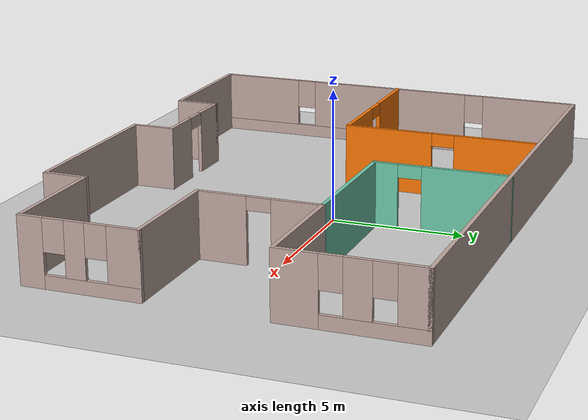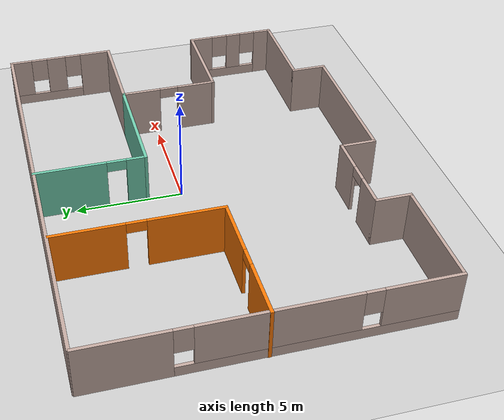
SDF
<sdf version="1.6">
 <world name="default">
  <model name="ground_plane">
   <static>1</static>
   <link name="link">
    <collision name="collision">
     <geometry><plane><normal>0 0 1</normal><size>100 100</size></plane></geometry>
     <surface>
      <contact><collide_bitmask>65535</collide_bitmask></contact>
      <friction><ode><mu>100</mu><mu2>50</mu2></ode></friction>
     </surface>
    </collision>
    <visual name="visual">
     <cast_shadows>0</cast_shadows>
     <geometry><plane><normal>0 0 1</normal><size>100 100</size></plane></geometry>
     <material>
      <script><uri>file://media/materials/scripts/gazebo.material</uri><name>Gazebo/Grey</name></script>
     </material>
    </visual>
   </link>
  </model>
  <model name="Office">
   <pose>-0.4312 -1.09674 0 0 -0 0</pose>
   <link name="Wall_12">
    <pose>-10.1892 -0.024999 0 0 0 -1.5708</pose>
    <visual name="Wall_12_Visual_0">
     <pose>-5.93121 0 1.25 0 -0 0</pose>
     <geometry><box><size>3.88759 0.15 2.5</size></box></geometry>
     <material>
      <script><uri>file://media/materials/scripts/gazebo.material</uri><name>Gazebo/Grey</name></script>
      <ambient>0.760784 0.662745 0.627451 1</ambient>
     </material>
     <meta><layer>0</layer></meta>
    </visual>
    <collision name="Wall_12_Collision_0">
     <geometry><box><size>3.88759 0.15 2.5</size></box></geometry>
     <pose>-5.93121 0 1.25 0 -0 0</pose>
    </collision>
    <visual name="Wall_12_Visual_1">
     <pose>1.94379 0 0.25 0 -0 0</pose>
     <geometry><box><size>11.8624 0.15 0.5</size></box></geometry>
     <material>
      <script><uri>file://media/materials/scripts/gazebo.material</uri><name>Gazebo/Grey</name></script>
      <ambient>0.760784 0.662745 0.627451 1</ambient>
     </material>
     <meta><layer>0</layer></meta>
    </visual>
    <collision name="Wall_12_Collision_1">
     <geometry><box><size>11.8624 0.15 0.5</size></box></geometry>
     <pose>1.94379 0 0.25 0 -0 0</pose>
    </collision>
    <visual name="Wall_12_Visual_2">
     <pose>0.229137 0 1.5 0 -0 0</pose>
     <geometry><box><size>6.8331 0.15 2</size></box></geometry>
     <material>
      <script><uri>file://media/materials/scripts/gazebo.material</uri><name>Gazebo/Grey</name></script>
      <ambient>0.760784 0.662745 0.627451 1</ambient>
     </material>
     <meta><layer>0</layer></meta>
    </visual>
    <collision name="Wall_12_Collision_2">
     <geometry><box><size>6.8331 0.15 2</size></box></geometry>
     <pose>0.229137 0 1.5 0 -0 0</pose>
    </collision>
    <visual name="Wall_12_Visual_3">
     <pose>6.16034 0 1.5 0 -0 0</pose>
     <geometry><box><size>3.42931 0.15 2</size></box></geometry>
     <material>
      <script><uri>file://media/materials/scripts/gazebo.material</uri><name>Gazebo/Grey</name></script>
      <ambient>0.760784 0.662745 0.627451 1</ambient>
     </material>
     <meta><layer>0</layer></meta>
    </visual>
    <collision name="Wall_12_Collision_3">
     <geometry><box><size>3.42931 0.15 2</size></box></geometry>
     <pose>6.16034 0 1.5 0 -0 0</pose>
    </collision>
    <visual name="Wall_12_Visual_4">
     <pose>-3.58741 0 1.9 0 -0 0</pose>
     <geometry><box><size>0.8 0.15 1.2</size></box></geometry>
     <material>
      <script><uri>file://media/materials/scripts/gazebo.material</uri><name>Gazebo/Grey</name></script>
      <ambient>0.760784 0.662745 0.627451 1</ambient>
     </material>
     <meta><layer>0</layer></meta>
    </visual>
    <collision name="Wall_12_Collision_4">
     <geometry><box><size>0.8 0.15 1.2</size></box></geometry>
     <pose>-3.58741 0 1.9 0 -0 0</pose>
    </collision>
    <visual name="Wall_12_Visual_5">
     <pose>4.04569 0 1.9 0 -0 0</pose>
     <geometry><box><size>0.8 0.15 1.2</size></box></geometry>
     <material>
      <script><uri>file://media/materials/scripts/gazebo.material</uri><name>Gazebo/Grey</name></script>
      <ambient>0.760784 0.662745 0.627451 1</ambient>
     </material>
     <meta><layer>0</layer></meta>
    </visual>
    <collision name="Wall_12_Collision_5">
     <geometry><box><size>0.8 0.15 1.2</size></box></geometry>
     <pose>4.04569 0 1.9 0 -0 0</pose>
    </collision>
   </link>
   <link name="Wall_13">
    <collision name="Wall_13_Collision">
     <geometry><box><size>5.25 0.15 2.5</size></box></geometry>
     <pose>0 0 1.25 0 -0 0</pose>
    </collision>
    <visual name="Wall_13_Visual">
     <pose>0 0 1.25 0 -0 0</pose>
     <geometry><box><size>5.25 0.15 2.5</size></box></geometry>
     <material>
      <script><uri>file://media/materials/scripts/gazebo.material</uri><name>Gazebo/Grey</name></script>
      <ambient>0.760784 0.662745 0.627451 1</ambient>
     </material>
     <meta><layer>0</layer></meta>
    </visual>
    <pose>-7.63921 -7.825 0 0 -0 0</pose>
   </link>
   <link name="Wall_14">
    <collision name="Wall_14_Collision">
     <geometry><box><size>1.75 0.15 2.5</size></box></geometry>
     <pose>0 0 1.25 0 -0 0</pose>
    </collision>
    <visual name="Wall_14_Visual">
     <pose>0 0 1.25 0 -0 0</pose>
     <geometry><box><size>1.75 0.15 2.5</size></box></geometry>
     <material>
      <script><uri>file://media/materials/scripts/gazebo.material</uri><name>Gazebo/Grey</name></script>
      <ambient>0.760784 0.662745 0.627451 1</ambient>
     </material>
     <meta><layer>0</layer></meta>
    </visual>
    <pose>-5.08921 -7.025 0 0 -0 1.5708</pose>
   </link>
   <link name="Wall_15">
    <pose>-3.03921 -6.225 0 0 -0 0</pose>
    <visual name="Wall_15_Visual_0">
     <pose>-1.30944 0 1.25 0 -0 0</pose>
     <geometry><box><size>1.63111 0.15 2.5</size></box></geometry>
     <material>
      <script><uri>file://media/materials/scripts/gazebo.material</uri><name>Gazebo/Grey</name></script>
      <ambient>0.760784 0.662745 0.627451 1</ambient>
     </material>
     <meta><layer>0</layer></meta>
    </visual>
    <collision name="Wall_15_Collision_0">
     <geometry><box><size>1.63111 0.15 2.5</size></box></geometry>
     <pose>-1.30944 0 1.25 0 -0 0</pose>
    </collision>
    <visual name="Wall_15_Visual_1">
     <pose>1.26555 0 1.25 0 -0 0</pose>
     <geometry><box><size>1.71889 0.15 2.5</size></box></geometry>
     <material>
      <script><uri>file://media/materials/scripts/gazebo.material</uri><name>Gazebo/Grey</name></script>
      <ambient>0.760784 0.662745 0.627451 1</ambient>
     </material>
     <meta><layer>0</layer></meta>
    </visual>
    <collision name="Wall_15_Collision_1">
     <geometry><box><size>1.71889 0.15 2.5</size></box></geometry>
     <pose>1.26555 0 1.25 0 -0 0</pose>
    </collision>
    <visual name="Wall_15_Visual_2">
     <pose>-0.04389 0 2.25 0 -0 0</pose>
     <geometry><box><size>0.9 0.15 0.5</size></box></geometry>
     <material>
      <script><uri>file://media/materials/scripts/gazebo.material</uri><name>Gazebo/Grey</name></script>
      <ambient>0.760784 0.662745 0.627451 1</ambient>
     </material>
     <meta><layer>0</layer></meta>
    </visual>
    <collision name="Wall_15_Collision_2">
     <geometry><box><size>0.9 0.15 0.5</size></box></geometry>
     <pose>-0.04389 0 2.25 0 -0 0</pose>
    </collision>
   </link>
   <link name="Wall_16">
    <collision name="Wall_16_Collision">
     <geometry><box><size>1.75 0.15 2.5</size></box></geometry>
     <pose>0 0 1.25 0 -0 0</pose>
    </collision>
    <visual name="Wall_16_Visual">
     <pose>0 0 1.25 0 -0 0</pose>
     <geometry><box><size>1.75 0.15 2.5</size></box></geometry>
     <material>
      <script><uri>file://media/materials/scripts/gazebo.material</uri><name>Gazebo/Grey</name></script>
      <ambient>0.760784 0.662745 0.627451 1</ambient>
     </material>
     <meta><layer>0</layer></meta>
    </visual>
    <pose>-0.98921 -7.025 0 0 0 -1.5708</pose>
   </link>
   <link name="Wall_17">
    <collision name="Wall_17_Collision">
     <geometry><box><size>7 0.15 2.5</size></box></geometry>
     <pose>0 0 1.25 0 -0 0</pose>
    </collision>
    <visual name="Wall_17_Visual">
     <pose>0 0 1.25 0 -0 0</pose>
     <geometry><box><size>7 0.15 2.5</size></box></geometry>
     <material>
      <script><uri>file://media/materials/scripts/gazebo.material</uri><name>Gazebo/Grey</name></script>
      <ambient>0.760784 0.662745 0.627451 1</ambient>
     </material>
     <meta><layer>0</layer></meta>
    </visual>
    <pose>2.43579 -7.825 0 0 -0 0</pose>
   </link>
   <link name="Wall_18">
    <collision name="Wall_18_Collision">
     <geometry><box><size>1.75 0.15 2.5</size></box></geometry>
     <pose>0 0 1.25 0 -0 0</pose>
    </collision>
    <visual name="Wall_18_Visual">
     <pose>0 0 1.25 0 -0 0</pose>
     <geometry><box><size>1.75 0.15 2.5</size></box></geometry>
     <material>
      <script><uri>file://media/materials/scripts/gazebo.material</uri><name>Gazebo/Grey</name></script>
      <ambient>0.760784 0.662745 0.627451 1</ambient>
     </material>
     <meta><layer>0</layer></meta>
    </visual>
    <pose>5.86079 -7.025 0 0 -0 1.5708</pose>
   </link>
   <link name="Wall_19">
    <collision name="Wall_19_Collision">
     <geometry><box><size>4.5 0.15 2.5</size></box></geometry>
     <pose>0 0 1.25 0 -0 0</pose>
    </collision>
    <visual name="Wall_19_Visual">
     <pose>0 0 1.25 0 -0 0</pose>
     <geometry><box><size>4.5 0.15 2.5</size></box></geometry>
     <material>
      <script><uri>file://media/materials/scripts/gazebo.material</uri><name>Gazebo/Grey</name></script>
      <ambient>0.760784 0.662745 0.627451 1</ambient>
     </material>
     <meta><layer>0</layer></meta>
    </visual>
    <pose>8.03579 -6.225 0 0 -0 0</pose>
   </link>
   <link name="Wall_20">
    <pose>10.2108 -4.05 0 0 -0 1.5708</pose>
    <visual name="Wall_20_Visual_0">
     <pose>-1.77798 0 1.25 0 -0 0</pose>
     <geometry><box><size>0.944037 0.15 2.5</size></box></geometry>
     <material>
      <script><uri>file://media/materials/scripts/gazebo.material</uri><name>Gazebo/Grey</name></script>
      <ambient>0.760784 0.662745 0.627451 1</ambient>
     </material>
     <meta><layer>0</layer></meta>
    </visual>
    <collision name="Wall_20_Collision_0">
     <geometry><box><size>0.944037 0.15 2.5</size></box></geometry>
     <pose>-1.77798 0 1.25 0 -0 0</pose>
    </collision>
    <visual name="Wall_20_Visual_1">
     <pose>0.472018 0 0.25 0 -0 0</pose>
     <geometry><box><size>3.55596 0.15 0.5</size></box></geometry>
     <material>
      <script><uri>file://media/materials/scripts/gazebo.material</uri><name>Gazebo/Grey</name></script>
      <ambient>0.760784 0.662745 0.627451 1</ambient>
     </material>
     <meta><layer>0</layer></meta>
    </visual>
    <collision name="Wall_20_Collision_1">
     <geometry><box><size>3.55596 0.15 0.5</size></box></geometry>
     <pose>0.472018 0 0.25 0 -0 0</pose>
    </collision>
    <visual name="Wall_20_Visual_2">
     <pose>-0.132031 0 1.5 0 -0 0</pose>
     <geometry><box><size>0.747865 0.15 2</size></box></geometry>
     <material>
      <script><uri>file://media/materials/scripts/gazebo.material</uri><name>Gazebo/Grey</name></script>
      <ambient>0.760784 0.662745 0.627451 1</ambient>
     </material>
     <meta><layer>0</layer></meta>
    </visual>
    <collision name="Wall_20_Collision_2">
     <geometry><box><size>0.747865 0.15 2</size></box></geometry>
     <pose>-0.132031 0 1.5 0 -0 0</pose>
    </collision>
    <visual name="Wall_20_Visual_3">
     <pose>1.64595 0 1.5 0 -0 0</pose>
     <geometry><box><size>1.2081 0.15 2</size></box></geometry>
     <material>
      <script><uri>file://media/materials/scripts/gazebo.material</uri><name>Gazebo/Grey</name></script>
      <ambient>0.760784 0.662745 0.627451 1</ambient>
     </material>
     <meta><layer>0</layer></meta>
    </visual>
    <collision name="Wall_20_Collision_3">
     <geometry><box><size>1.2081 0.15 2</size></box></geometry>
     <pose>1.64595 0 1.5 0 -0 0</pose>
    </collision>
    <visual name="Wall_20_Visual_4">
     <pose>-0.905963 0 1.9 0 -0 0</pose>
     <geometry><box><size>0.8 0.15 1.2</size></box></geometry>
     <material>
      <script><uri>file://media/materials/scripts/gazebo.material</uri><name>Gazebo/Grey</name></script>
      <ambient>0.760784 0.662745 0.627451 1</ambient>
     </material>
     <meta><layer>0</layer></meta>
    </visual>
    <collision name="Wall_20_Collision_4">
     <geometry><box><size>0.8 0.15 1.2</size></box></geometry>
     <pose>-0.905963 0 1.9 0 -0 0</pose>
    </collision>
    <visual name="Wall_20_Visual_5">
     <pose>0.641902 0 1.9 0 -0 0</pose>
     <geometry><box><size>0.8 0.15 1.2</size></box></geometry>
     <material>
      <script><uri>file://media/materials/scripts/gazebo.material</uri><name>Gazebo/Grey</name></script>
      <ambient>0.760784 0.662745 0.627451 1</ambient>
     </material>
     <meta><layer>0</layer></meta>
    </visual>
    <collision name="Wall_20_Collision_5">
     <geometry><box><size>0.8 0.15 1.2</size></box></geometry>
     <pose>0.641902 0 1.9 0 -0 0</pose>
    </collision>
   </link>
   <link name="Wall_21">
    <collision name="Wall_21_Collision">
     <geometry><box><size>4.5 0.15 2.5</size></box></geometry>
     <pose>0 0 1.25 0 -0 0</pose>
    </collision>
    <visual name="Wall_21_Visual">
     <pose>0 0 1.25 0 -0 0</pose>
     <geometry><box><size>4.5 0.15 2.5</size></box></geometry>
     <material>
      <script><uri>file://media/materials/scripts/gazebo.material</uri><name>Gazebo/Grey</name></script>
      <ambient>0.760784 0.662745 0.627451 1</ambient>
     </material>
     <meta><layer>0</layer></meta>
    </visual>
    <pose>8.03579 -1.875 0 0 -0 3.14159</pose>
   </link>
   <link name="Wall_22">
    <pose>5.86079 0.425001 0 0 -0 1.5708</pose>
    <visual name="Wall_22_Visual_0">
     <pose>-1.41181 0 1.25 0 -0 0</pose>
     <geometry><box><size>1.92639 0.15 2.5</size></box></geometry>
     <material>
      <script><uri>file://media/materials/scripts/gazebo.material</uri><name>Gazebo/Grey</name></script>
      <ambient>0.760784 0.662745 0.627451 1</ambient>
     </material>
     <meta><layer>0</layer></meta>
    </visual>
    <collision name="Wall_22_Collision_0">
     <geometry><box><size>1.92639 0.15 2.5</size></box></geometry>
     <pose>-1.41181 0 1.25 0 -0 0</pose>
    </collision>
    <visual name="Wall_22_Visual_1">
     <pose>1.41319 0 1.25 0 -0 0</pose>
     <geometry><box><size>1.92361 0.15 2.5</size></box></geometry>
     <material>
      <script><uri>file://media/materials/scripts/gazebo.material</uri><name>Gazebo/Grey</name></script>
      <ambient>0.760784 0.662745 0.627451 1</ambient>
     </material>
     <meta><layer>0</layer></meta>
    </visual>
    <collision name="Wall_22_Collision_1">
     <geometry><box><size>1.92361 0.15 2.5</size></box></geometry>
     <pose>1.41319 0 1.25 0 -0 0</pose>
    </collision>
    <visual name="Wall_22_Visual_2">
     <pose>0.001387 0 2.25 0 -0 0</pose>
     <geometry><box><size>0.9 0.15 0.5</size></box></geometry>
     <material>
      <script><uri>file://media/materials/scripts/gazebo.material</uri><name>Gazebo/Grey</name></script>
      <ambient>0.760784 0.662745 0.627451 1</ambient>
     </material>
     <meta><layer>0</layer></meta>
    </visual>
    <collision name="Wall_22_Collision_2">
     <geometry><box><size>0.9 0.15 0.5</size></box></geometry>
     <pose>0.001387 0 2.25 0 -0 0</pose>
    </collision>
   </link>
   <link name="Wall_23">
    <collision name="Wall_23_Collision">
     <geometry><box><size>4.5 0.15 2.5</size></box></geometry>
     <pose>0 0 1.25 0 -0 0</pose>
    </collision>
    <visual name="Wall_23_Visual">
     <pose>0 0 1.25 0 -0 0</pose>
     <geometry><box><size>4.5 0.15 2.5</size></box></geometry>
     <material>
      <script><uri>file://media/materials/scripts/gazebo.material</uri><name>Gazebo/Grey</name></script>
      <ambient>0.760784 0.662745 0.627451 1</ambient>
     </material>
     <meta><layer>0</layer></meta>
    </visual>
    <pose>8.03579 2.725 0 0 -0 0</pose>
   </link>
   <link name="Wall_24">
    <pose>10.2108 5.275 0 0 -0 1.5708</pose>
    <visual name="Wall_24_Visual_0">
     <pose>-1.82608 0 1.25 0 -0 0</pose>
     <geometry><box><size>1.59784 0.15 2.5</size></box></geometry>
     <material>
      <script><uri>file://media/materials/scripts/gazebo.material</uri><name>Gazebo/Grey</name></script>
      <ambient>0.760784 0.662745 0.627451 1</ambient>
     </material>
     <meta><layer>0</layer></meta>
    </visual>
    <collision name="Wall_24_Collision_0">
     <geometry><box><size>1.59784 0.15 2.5</size></box></geometry>
     <pose>-1.82608 0 1.25 0 -0 0</pose>
    </collision>
    <visual name="Wall_24_Visual_1">
     <pose>0.798919 0 0.25 0 -0 0</pose>
     <geometry><box><size>3.65216 0.15 0.5</size></box></geometry>
     <material>
      <script><uri>file://media/materials/scripts/gazebo.material</uri><name>Gazebo/Grey</name></script>
      <ambient>0.760784 0.662745 0.627451 1</ambient>
     </material>
     <meta><layer>0</layer></meta>
    </visual>
    <collision name="Wall_24_Collision_1">
     <geometry><box><size>3.65216 0.15 0.5</size></box></geometry>
     <pose>0.798919 0 0.25 0 -0 0</pose>
    </collision>
    <visual name="Wall_24_Visual_2">
     <pose>0.252308 0 1.5 0 -0 0</pose>
     <geometry><box><size>0.958938 0.15 2</size></box></geometry>
     <material>
      <script><uri>file://media/materials/scripts/gazebo.material</uri><name>Gazebo/Grey</name></script>
      <ambient>0.760784 0.662745 0.627451 1</ambient>
     </material>
     <meta><layer>0</layer></meta>
    </visual>
    <collision name="Wall_24_Collision_2">
     <geometry><box><size>0.958938 0.15 2</size></box></geometry>
     <pose>0.252308 0 1.5 0 -0 0</pose>
    </collision>
    <visual name="Wall_24_Visual_3">
     <pose>2.07839 0 1.5 0 -0 0</pose>
     <geometry><box><size>1.09322 0.15 2</size></box></geometry>
     <material>
      <script><uri>file://media/materials/scripts/gazebo.material</uri><name>Gazebo/Grey</name></script>
      <ambient>0.760784 0.662745 0.627451 1</ambient>
     </material>
     <meta><layer>0</layer></meta>
    </visual>
    <collision name="Wall_24_Collision_3">
     <geometry><box><size>1.09322 0.15 2</size></box></geometry>
     <pose>2.07839 0 1.5 0 -0 0</pose>
    </collision>
    <visual name="Wall_24_Visual_4">
     <pose>-0.627161 0 1.9 0 -0 0</pose>
     <geometry><box><size>0.8 0.15 1.2</size></box></geometry>
     <material>
      <script><uri>file://media/materials/scripts/gazebo.material</uri><name>Gazebo/Grey</name></script>
      <ambient>0.760784 0.662745 0.627451 1</ambient>
     </material>
     <meta><layer>0</layer></meta>
    </visual>
    <collision name="Wall_24_Collision_4">
     <geometry><box><size>0.8 0.15 1.2</size></box></geometry>
     <pose>-0.627161 0 1.9 0 -0 0</pose>
    </collision>
    <visual name="Wall_24_Visual_5">
     <pose>1.13178 0 1.9 0 -0 0</pose>
     <geometry><box><size>0.8 0.15 1.2</size></box></geometry>
     <material>
      <script><uri>file://media/materials/scripts/gazebo.material</uri><name>Gazebo/Grey</name></script>
      <ambient>0.760784 0.662745 0.627451 1</ambient>
     </material>
     <meta><layer>0</layer></meta>
    </visual>
    <collision name="Wall_24_Collision_5">
     <geometry><box><size>0.8 0.15 1.2</size></box></geometry>
     <pose>1.13178 0 1.9 0 -0 0</pose>
    </collision>
   </link>
   <link name="Wall_25">
    <collision name="Wall_25_Collision">
     <geometry><box><size>20.5 0.15 2.5</size></box></geometry>
     <pose>0 0 1.25 0 -0 0</pose>
    </collision>
    <visual name="Wall_25_Visual">
     <pose>0 0 1.25 0 -0 0</pose>
     <geometry><box><size>20.5 0.15 2.5</size></box></geometry>
     <material>
      <script><uri>file://media/materials/scripts/gazebo.material</uri><name>Gazebo/Grey</name></script>
      <ambient>0.760784 0.662745 0.627451 1</ambient>
     </material>
     <meta><layer>0</layer></meta>
    </visual>
    <pose>0.03579 7.825 0 0 -0 3.14159</pose>
   </link>
   <link name="Wall_27">
    <pose>-7.03579 0.139084 0 0 -0 0</pose>
    <visual name="Wall_27_Visual_0">
     <pose>-1.87618 0 1.25 0 -0 0</pose>
     <geometry><box><size>2.74763 0.15 2.5</size></box></geometry>
     <material>
      <script><uri>file://media/materials/scripts/gazebo.material</uri><name>Gazebo/Grey</name></script>
      <ambient>0.996078 0.47451 0.0196078 1</ambient>
     </material>
     <meta><layer>0</layer></meta>
    </visual>
    <collision name="Wall_27_Collision_0">
     <geometry><box><size>2.74763 0.15 2.5</size></box></geometry>
     <pose>-1.87618 0 1.25 0 -0 0</pose>
    </collision>
    <visual name="Wall_27_Visual_1">
     <pose>1.82382 0 1.25 0 -0 0</pose>
     <geometry><box><size>2.85237 0.15 2.5</size></box></geometry>
     <material>
      <script><uri>file://media/materials/scripts/gazebo.material</uri><name>Gazebo/Grey</name></script>
      <ambient>0.996078 0.47451 0.0196078 1</ambient>
     </material>
     <meta><layer>0</layer></meta>
    </visual>
    <collision name="Wall_27_Collision_1">
     <geometry><box><size>2.85237 0.15 2.5</size></box></geometry>
     <pose>1.82382 0 1.25 0 -0 0</pose>
    </collision>
    <visual name="Wall_27_Visual_2">
     <pose>-0.052368 0 2.25 0 -0 0</pose>
     <geometry><box><size>0.9 0.15 0.5</size></box></geometry>
     <material>
      <script><uri>file://media/materials/scripts/gazebo.material</uri><name>Gazebo/Grey</name></script>
      <ambient>0.996078 0.47451 0.0196078 1</ambient>
     </material>
     <meta><layer>0</layer></meta>
    </visual>
    <collision name="Wall_27_Collision_2">
     <geometry><box><size>0.9 0.15 0.5</size></box></geometry>
     <pose>-0.052368 0 2.25 0 -0 0</pose>
    </collision>
   </link>
   <link name="Wall_28">
    <pose>-3.86079 3.93908 0 0 -0 1.5708</pose>
    <visual name="Wall_28_Visual_0">
     <pose>-2.10796 0 1.25 0 -0 0</pose>
     <geometry><box><size>3.53407 0.15 2.5</size></box></geometry>
     <material>
      <script><uri>file://media/materials/scripts/gazebo.material</uri><name>Gazebo/Grey</name></script>
      <ambient>0.996078 0.47451 0.0196078 1</ambient>
     </material>
     <meta><layer>0</layer></meta>
    </visual>
    <collision name="Wall_28_Collision_0">
     <geometry><box><size>3.53407 0.15 2.5</size></box></geometry>
     <pose>-2.10796 0 1.25 0 -0 0</pose>
    </collision>
    <visual name="Wall_28_Visual_1">
     <pose>2.21704 0 1.25 0 -0 0</pose>
     <geometry><box><size>3.31593 0.15 2.5</size></box></geometry>
     <material>
      <script><uri>file://media/materials/scripts/gazebo.material</uri><name>Gazebo/Grey</name></script>
      <ambient>0.996078 0.47451 0.0196078 1</ambient>
     </material>
     <meta><layer>0</layer></meta>
    </visual>
    <collision name="Wall_28_Collision_1">
     <geometry><box><size>3.31593 0.15 2.5</size></box></geometry>
     <pose>2.21704 0 1.25 0 -0 0</pose>
    </collision>
    <visual name="Wall_28_Visual_2">
     <pose>0.109073 0 2.25 0 -0 0</pose>
     <geometry><box><size>0.9 0.15 0.5</size></box></geometry>
     <material>
      <script><uri>file://media/materials/scripts/gazebo.material</uri><name>Gazebo/Grey</name></script>
      <ambient>0.996078 0.47451 0.0196078 1</ambient>
     </material>
     <meta><layer>0</layer></meta>
    </visual>
    <collision name="Wall_28_Collision_2">
     <geometry><box><size>0.9 0.15 0.5</size></box></geometry>
     <pose>0.109073 0 2.25 0 -0 0</pose>
    </collision>
   </link>
   <link name="Wall_30">
    <collision name="Wall_30_Collision">
     <geometry><box><size>5.5 0.15 2.5</size></box></geometry>
     <pose>0 0 1.25 0 -0 0</pose>
    </collision>
    <visual name="Wall_30_Visual">
     <pose>0 0 1.25 0 -0 0</pose>
     <geometry><box><size>5.5 0.15 2.5</size></box></geometry>
     <material>
      <script><uri>file://media/materials/scripts/gazebo.material</uri><name>Gazebo/Grey</name></script>
      <ambient>0.435294 0.796078 0.67451 1</ambient>
     </material>
     <meta><layer>0</layer></meta>
    </visual>
    <pose>3.18579 2.725 0 0 -0 3.14159</pose>
   </link>
   <link name="Wall_31">
    <pose>0.51079 5.275 0 0 -0 1.5708</pose>
    <visual name="Wall_31_Visual_0">
     <pose>-2.13099 0 1.25 0 -0 0</pose>
     <geometry><box><size>0.988014 0.15 2.5</size></box></geometry>
     <material>
      <script><uri>file://media/materials/scripts/gazebo.material</uri><name>Gazebo/Grey</name></script>
      <ambient>0.435294 0.796078 0.67451 1</ambient>
     </material>
     <meta><layer>0</layer></meta>
    </visual>
    <collision name="Wall_31_Collision_0">
     <geometry><box><size>0.988014 0.15 2.5</size></box></geometry>
     <pose>-2.13099 0 1.25 0 -0 0</pose>
    </collision>
    <visual name="Wall_31_Visual_1">
     <pose>0.944007 0 1.25 0 -0 0</pose>
     <geometry><box><size>3.36199 0.15 2.5</size></box></geometry>
     <material>
      <script><uri>file://media/materials/scripts/gazebo.material</uri><name>Gazebo/Grey</name></script>
      <ambient>0.435294 0.796078 0.67451 1</ambient>
     </material>
     <meta><layer>0</layer></meta>
    </visual>
    <collision name="Wall_31_Collision_1">
     <geometry><box><size>3.36199 0.15 2.5</size></box></geometry>
     <pose>0.944007 0 1.25 0 -0 0</pose>
    </collision>
    <visual name="Wall_31_Visual_2">
     <pose>-1.18699 0 2.25 0 -0 0</pose>
     <geometry><box><size>0.9 0.15 0.5</size></box></geometry>
     <material>
      <script><uri>file://media/materials/scripts/gazebo.material</uri><name>Gazebo/Grey</name></script>
      <ambient>0.435294 0.796078 0.67451 1</ambient>
     </material>
     <meta><layer>0</layer></meta>
    </visual>
    <collision name="Wall_31_Collision_2">
     <geometry><box><size>0.9 0.15 0.5</size></box></geometry>
     <pose>-1.18699 0 2.25 0 -0 0</pose>
    </collision>
   </link>
   <static>1</static>
  </model>
 </world>
</sdf>
